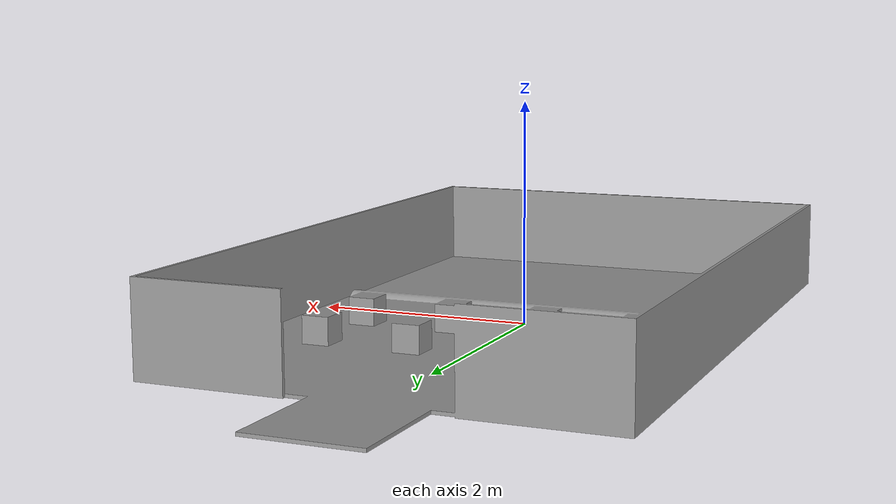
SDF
<?xml version='1.0'?>
<sdf version='1.6'>
  <model name='RC26_renwu'>
    <static>true</static>
    <link name='link'>
      <!-- Keep arena flat, preserve yaw, and flip top/bottom so the front face is upward -->
      <pose>0 0 0 3.14159 0 1.5708</pose>

      <collision name='collision'>
        <max_contacts>20</max_contacts>
        <geometry>
          <mesh>
            <uri>model://RC26_renwu/meshes/RC26_renwu.stl</uri>
            <scale>0.001 0.001 0.001</scale>
          </mesh>
        </geometry>
      </collision>

      <visual name='visual'>
        <cast_shadows>1</cast_shadows>
        <transparency>0</transparency>
        <material>
          <script>
            <uri>file://media/materials/scripts/gazebo.material</uri>
            <name>Gazebo/Grey</name>
          </script>
          <shader type='vertex'>
            <normal_map>__default__</normal_map>
          </shader>
          <lighting>1</lighting>
          <ambient>0.55 0.55 0.55 1</ambient>
          <diffuse>0.65 0.65 0.65 1</diffuse>
          <specular>0.05 0.05 0.05 1</specular>
          <emissive>0 0 0 1</emissive>
        </material>
        <geometry>
          <mesh>
            <uri>model://RC26_renwu/meshes/RC26_renwu.stl</uri>
            <scale>0.001 0.001 0.001</scale>
          </mesh>
        </geometry>
      </visual>
    </link>
  </model>
</sdf>
